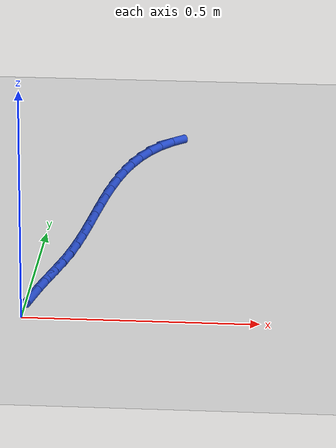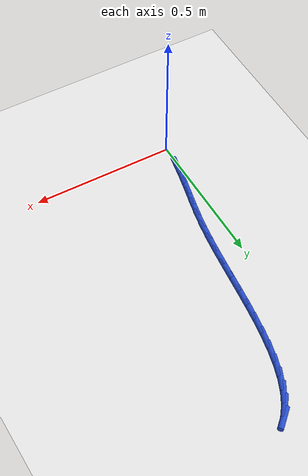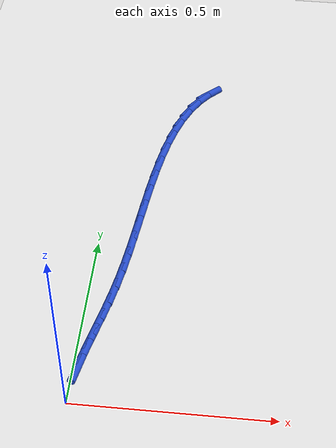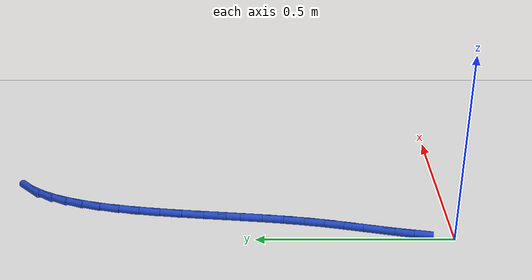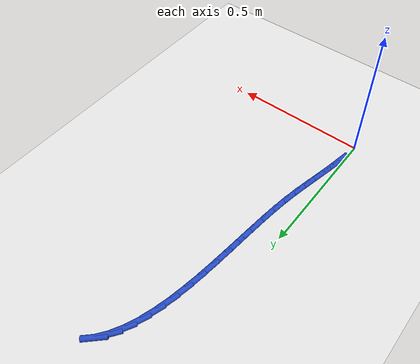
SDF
<sdf version="1.6">
 <world name="default">
  <model name="ground_plane">
   <static>1</static>
   <link name="link">
    <collision name="collision">
     <geometry><plane><normal>0 0 1</normal><size>100 100</size></plane></geometry>
     <surface><friction><ode><mu>100</mu><mu2>50</mu2></ode></friction></surface>
    </collision>
    <visual name="visual">
     <cast_shadows>0</cast_shadows>
     <geometry><plane><normal>0 0 1</normal><size>100 100</size></plane></geometry>
     <material>
      <script><uri>file://media/materials/scripts/gazebo.material</uri><name>Gazebo/WhiteGlow</name></script>
     </material>
    </visual>
   </link>
  </model>
  <model name="line">
   <link name="link_2">
    <pose>0.01096388504051575 0.09379192963262921 0.01 0 1.57 1.3823132232937732</pose>
    <collision name="collision">
     <geometry><cylinder><radius>0.01</radius><length>0.08</length></cylinder></geometry>
    </collision>
    <visual name="visual">
     <material>
      <script><name>Gazebo/Blue</name><uri>file://media/materials/scripts/gazebo.material</uri></script>
     </material>
     <geometry><cylinder><radius>0.01</radius><length>0.08</length></cylinder></geometry>
    </visual>
   </link>
   <link name="link_3">
    <pose>0.019821983189146835 0.1402308488769827 0.01 0 1.57 1.3552643515435585</pose>
    <collision name="collision">
     <geometry><cylinder><radius>0.01</radius><length>0.08</length></cylinder></geometry>
    </collision>
    <visual name="visual">
     <material>
      <script><name>Gazebo/Blue</name><uri>file://media/materials/scripts/gazebo.material</uri></script>
     </material>
     <geometry><cylinder><radius>0.01</radius><length>0.08</length></cylinder></geometry>
    </visual>
   </link>
   <link name="link_4">
    <pose>0.030057074917331013 0.18698081076263404 0.01 0 1.57 1.3441982621026298</pose>
    <collision name="collision">
     <geometry><cylinder><radius>0.01</radius><length>0.08</length></cylinder></geometry>
    </collision>
    <visual name="visual">
     <material>
      <script><name>Gazebo/Blue</name><uri>file://media/materials/scripts/gazebo.material</uri></script>
     </material>
     <geometry><cylinder><radius>0.01</radius><length>0.08</length></cylinder></geometry>
    </visual>
   </link>
   <link name="link_5">
    <pose>0.041013827595546525 0.23450362005653727 0.01 0 1.57 1.348454277895693</pose>
    <collision name="collision">
     <geometry><cylinder><radius>0.01</radius><length>0.08</length></cylinder></geometry>
    </collision>
    <visual name="visual">
     <material>
      <script><name>Gazebo/Blue</name><uri>file://media/materials/scripts/gazebo.material</uri></script>
     </material>
     <geometry><cylinder><radius>0.01</radius><length>0.08</length></cylinder></geometry>
    </visual>
   </link>
   <link name="link_6">
    <pose>0.05203690859427156 0.2832610815256463 0.01 0 1.57 1.3668670149796556</pose>
    <collision name="collision">
     <geometry><cylinder><radius>0.01</radius><length>0.08</length></cylinder></geometry>
    </collision>
    <visual name="visual">
     <material>
      <script><name>Gazebo/Blue</name><uri>file://media/materials/scripts/gazebo.material</uri></script>
     </material>
     <geometry><cylinder><radius>0.01</radius><length>0.08</length></cylinder></geometry>
    </visual>
   </link>
   <link name="link_7">
    <pose>0.062470985283984364 0.33371499993691517 0.01 0 1.57 1.3974777674702386</pose>
    <collision name="collision">
     <geometry><cylinder><radius>0.01</radius><length>0.08</length></cylinder></geometry>
    </collision>
    <visual name="visual">
     <material>
      <script><name>Gazebo/Blue</name><uri>file://media/materials/scripts/gazebo.material</uri></script>
     </material>
     <geometry><cylinder><radius>0.01</radius><length>0.08</length></cylinder></geometry>
    </visual>
   </link>
   <link name="link_8">
    <pose>0.07167900536336408 0.3863096790358598 0.01 0 1.57 1.4286907114682286</pose>
    <collision name="collision">
     <geometry><cylinder><radius>0.01</radius><length>0.08</length></cylinder></geometry>
    </collision>
    <visual name="visual">
     <material>
      <script><name>Gazebo/Blue</name><uri>file://media/materials/scripts/gazebo.material</uri></script>
     </material>
     <geometry><cylinder><radius>0.01</radius><length>0.08</length></cylinder></geometry>
    </visual>
   </link>
   <link name="link_9">
    <pose>0.07950735277643428 0.44102659564275165 0.01 0 1.57 1.4503571609560346</pose>
    <collision name="collision">
     <geometry><cylinder><radius>0.01</radius><length>0.08</length></cylinder></geometry>
    </collision>
    <visual name="visual">
     <material>
      <script><name>Gazebo/Blue</name><uri>file://media/materials/scripts/gazebo.material</uri></script>
     </material>
     <geometry><cylinder><radius>0.01</radius><length>0.08</length></cylinder></geometry>
    </visual>
   </link>
   <link name="link_10">
    <pose>0.08632366887201079 0.4973481908430702 0.01 0 1.57 1.4632078636833503</pose>
    <collision name="collision">
     <geometry><cylinder><radius>0.01</radius><length>0.08</length></cylinder></geometry>
    </collision>
    <visual name="visual">
     <material>
      <script><name>Gazebo/Blue</name><uri>file://media/materials/scripts/gazebo.material</uri></script>
     </material>
     <geometry><cylinder><radius>0.01</radius><length>0.08</length></cylinder></geometry>
    </visual>
   </link>
   <link name="link_11">
    <pose>0.09252145301544136 0.5547321500561655 0.01 0 1.57 1.4680106469549692</pose>
    <collision name="collision">
     <geometry><cylinder><radius>0.01</radius><length>0.08</length></cylinder></geometry>
    </collision>
    <visual name="visual">
     <material>
      <script><name>Gazebo/Blue</name><uri>file://media/materials/scripts/gazebo.material</uri></script>
     </material>
     <geometry><cylinder><radius>0.01</radius><length>0.08</length></cylinder></geometry>
    </visual>
   </link>
   <link name="link_12">
    <pose>0.09849420457207377 0.6126361587013875 0.01 0 1.57 1.4650923810912293</pose>
    <collision name="collision">
     <geometry><cylinder><radius>0.01</radius><length>0.08</length></cylinder></geometry>
    </collision>
    <visual name="visual">
     <material>
      <script><name>Gazebo/Blue</name><uri>file://media/materials/scripts/gazebo.material</uri></script>
     </material>
     <geometry><cylinder><radius>0.01</radius><length>0.08</length></cylinder></geometry>
    </visual>
   </link>
   <link name="link_13">
    <pose>0.10463542290725582 0.6705179021980868 0.01 0 1.57 1.4543761756224676</pose>
    <collision name="collision">
     <geometry><cylinder><radius>0.01</radius><length>0.08</length></cylinder></geometry>
    </collision>
    <visual name="visual">
     <material>
      <script><name>Gazebo/Blue</name><uri>file://media/materials/scripts/gazebo.material</uri></script>
     </material>
     <geometry><cylinder><radius>0.01</radius><length>0.08</length></cylinder></geometry>
    </visual>
   </link>
   <link name="link_14">
    <pose>0.11133860738633525 0.727835065965613 0.01 0 1.57 1.4353801628410665</pose>
    <collision name="collision">
     <geometry><cylinder><radius>0.01</radius><length>0.08</length></cylinder></geometry>
    </collision>
    <visual name="visual">
     <material>
      <script><name>Gazebo/Blue</name><uri>file://media/materials/scripts/gazebo.material</uri></script>
     </material>
     <geometry><cylinder><radius>0.01</radius><length>0.08</length></cylinder></geometry>
    </visual>
   </link>
   <link name="link_15">
    <pose>0.1189972573746598 0.7840453354233163 0.01 0 1.57 1.407179786286679</pose>
    <collision name="collision">
     <geometry><cylinder><radius>0.01</radius><length>0.08</length></cylinder></geometry>
    </collision>
    <visual name="visual">
     <material>
      <script><name>Gazebo/Blue</name><uri>file://media/materials/scripts/gazebo.material</uri></script>
     </material>
     <geometry><cylinder><radius>0.01</radius><length>0.08</length></cylinder></geometry>
    </visual>
   </link>
   <link name="link_16">
    <pose>0.12800487223757734 0.8386063959905475 0.01 0 1.57 1.3683352572934169</pose>
    <collision name="collision">
     <geometry><cylinder><radius>0.01</radius><length>0.08</length></cylinder></geometry>
    </collision>
    <visual name="visual">
     <material>
      <script><name>Gazebo/Blue</name><uri>file://media/materials/scripts/gazebo.material</uri></script>
     </material>
     <geometry><cylinder><radius>0.01</radius><length>0.08</length></cylinder></geometry>
    </visual>
   </link>
   <link name="link_17">
    <pose>0.13875495134043558 0.8909759330866563 0.01 0 1.57 1.3167913644758173</pose>
    <collision name="collision">
     <geometry><cylinder><radius>0.01</radius><length>0.08</length></cylinder></geometry>
    </collision>
    <visual name="visual">
     <material>
      <script><name>Gazebo/Blue</name><uri>file://media/materials/scripts/gazebo.material</uri></script>
     </material>
     <geometry><cylinder><radius>0.01</radius><length>0.08</length></cylinder></geometry>
    </visual>
   </link>
   <link name="link_18">
    <pose>0.1516409940485823 0.9406116321309927 0.01 0 1.57 1.249777381712391</pose>
    <collision name="collision">
     <geometry><cylinder><radius>0.01</radius><length>0.08</length></cylinder></geometry>
    </collision>
    <visual name="visual">
     <material>
      <script><name>Gazebo/Blue</name><uri>file://media/materials/scripts/gazebo.material</uri></script>
     </material>
     <geometry><cylinder><radius>0.01</radius><length>0.08</length></cylinder></geometry>
    </visual>
   </link>
   <link name="link_19">
    <pose>0.1670564997273652 0.9869711785429068 0.01 0 1.57 1.1637899397758265</pose>
    <collision name="collision">
     <geometry><cylinder><radius>0.01</radius><length>0.08</length></cylinder></geometry>
    </collision>
    <visual name="visual">
     <material>
      <script><name>Gazebo/Blue</name><uri>file://media/materials/scripts/gazebo.material</uri></script>
     </material>
     <geometry><cylinder><radius>0.01</radius><length>0.08</length></cylinder></geometry>
    </visual>
   </link>
   <link name="link_20">
    <pose>0.18539496774213218 1.0295122577417493 0.01 0 1.57 1.0548622389833235</pose>
    <collision name="collision">
     <geometry><cylinder><radius>0.01</radius><length>0.08</length></cylinder></geometry>
    </collision>
    <visual name="visual">
     <material>
      <script><name>Gazebo/Blue</name><uri>file://media/materials/scripts/gazebo.material</uri></script>
     </material>
     <geometry><cylinder><radius>0.01</radius><length>0.08</length></cylinder></geometry>
    </visual>
   </link>
   <link name="link_21">
    <pose>0.20704989745823102 1.06769255514687 0.01 0 1.57 0.9195136686355619</pose>
    <collision name="collision">
     <geometry><cylinder><radius>0.01</radius><length>0.08</length></cylinder></geometry>
    </collision>
    <visual name="visual">
     <material>
      <script><name>Gazebo/Blue</name><uri>file://media/materials/scripts/gazebo.material</uri></script>
     </material>
     <geometry><cylinder><radius>0.01</radius><length>0.08</length></cylinder></geometry>
    </visual>
   </link>
   <link name="link_22">
    <pose>0.23241478824100925 1.1009697561776188 0.01 0 1.57 0.756844719797566</pose>
    <collision name="collision">
     <geometry><cylinder><radius>0.01</radius><length>0.08</length></cylinder></geometry>
    </collision>
    <visual name="visual">
     <material>
      <script><name>Gazebo/Blue</name><uri>file://media/materials/scripts/gazebo.material</uri></script>
     </material>
     <geometry><cylinder><radius>0.01</radius><length>0.08</length></cylinder></geometry>
    </visual>
   </link>
  </model>
 </world>
</sdf>
